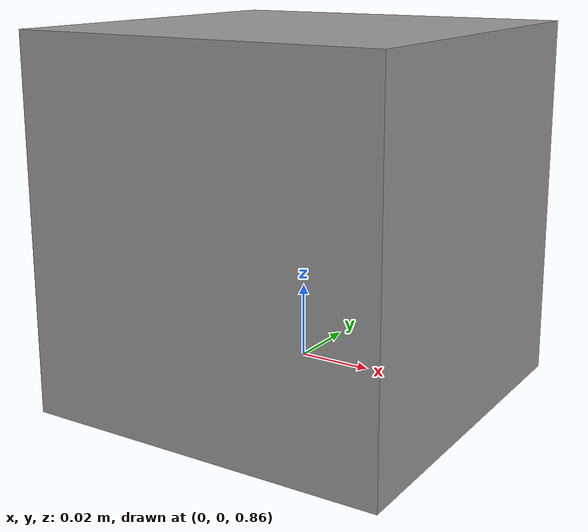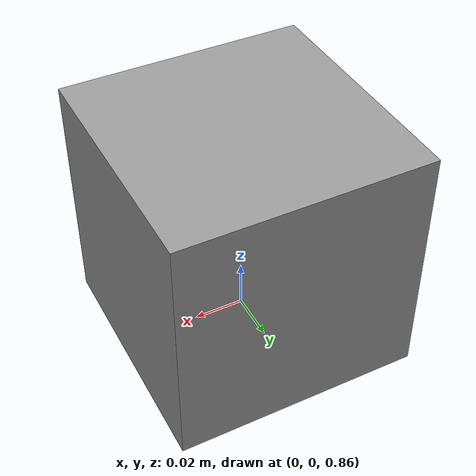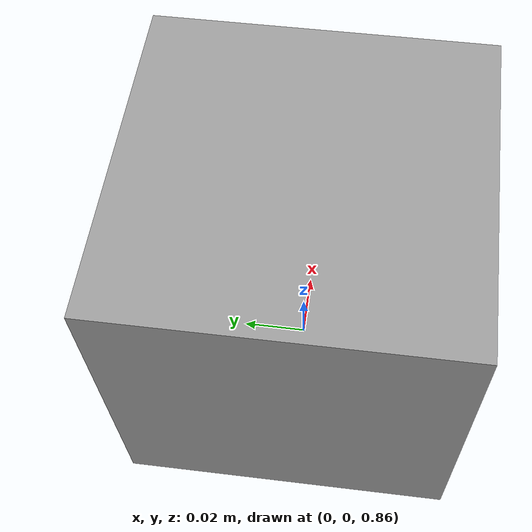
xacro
<?xml version="1.0"?>
<!-- Revolute-Revolute Manipulator -->
<robot name="rrbot" xmlns:xacro="http://www.ros.org/wiki/xacro">

  <!-- Constants for robot dimensions -->
  <xacro:property name="PI" value="3.1415926535897931"/>
  <xacro:property name="mass" value="1" /> <!-- arbitrary value for mass -->
  <xacro:property name="width" value="0.1" /> <!-- Square dimensions (widthxwidth) of beams -->
  <xacro:property name="height1" value="2" /> <!-- Link 1 -->
  <xacro:property name="height2" value="1" /> <!-- Link 2 -->
  <xacro:property name="height3" value="1" /> <!-- Link 3 -->

  <xacro:property name="camera_link" value="0.1" /> <!-- Size of square 'camera' box -->
  <xacro:property name="axel_offset" value="0.1" />  <!--Space btw top of beam and the each joint -->

  <!-- Import all Gazebo-customization elements, including Gazebo colors -->
  <xacro:include filename="$(find rrbot_description)/urdf/rrbot.gazebo" />
  <!-- Import Rviz colors -->
  <xacro:include filename="$(find rrbot_description)/urdf/materials.xacro" />

  <!-- Used for fixing robot to Gazebo 'base_link' -->
  <link name="world"/>

  <joint name="camera_joint" type="fixed">
    <axis xyz="0 0 0" />
    <origin xyz="0 0 0.9" rpy="0 ${pi/2} 0"/>
    <parent link="world"/>
    <child link="camera_link"/>
  </joint>

  <!-- Camera -->
  <link name="camera_link">
    <collision>
      <origin xyz="0 0 0" rpy="0 0 0"/>
      <geometry>
	<box size="${camera_link} ${camera_link} ${camera_link}"/>
      </geometry>
    </collision>

    <visual>
      <origin xyz="0 0 0" rpy="0 0 0"/>
      <geometry>
	<box size="${camera_link} ${camera_link} ${camera_link}"/>
      </geometry>
      <material name="grey"/>
    </visual>

    <inertial>
      <mass value="0.1" />
      <origin xyz="0 0 0" rpy="0 0 0"/>
      <inertia ixx="1" ixy="0" ixz="0" iyy="1" iyz="0" izz="1" />
    </inertial>
  </link>

  <!-- generate an optical frame http://www.ros.org/reps/rep-0103.html#suffix-frames
      so that ros and opencv can operate on the camera frame correctly -->
  <joint name="camera_optical_joint" type="fixed">
    <!-- these values have to be these values otherwise the gazebo camera image
        won't be aligned properly with the frame it is supposedly originating from -->
    <origin xyz="0 0 0" rpy="${-pi/2} 0 ${-pi/2}"/>
    <parent link="camera_link"/>
    <child link="camera_link_optical"/>
  </joint>

  <link name="camera_link_optical">
  </link>

</robot>
